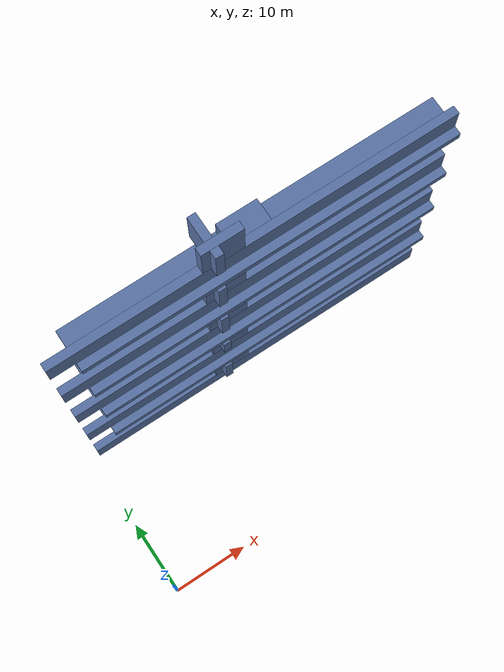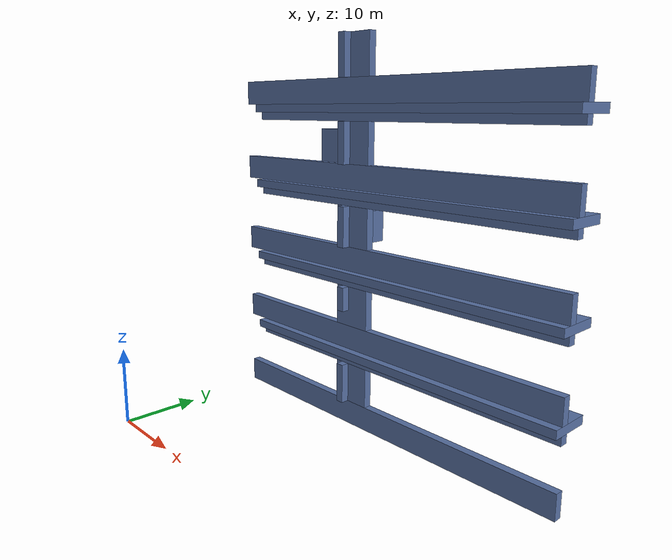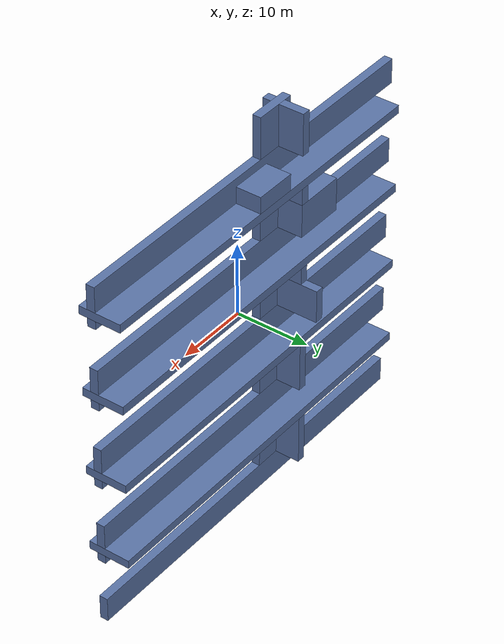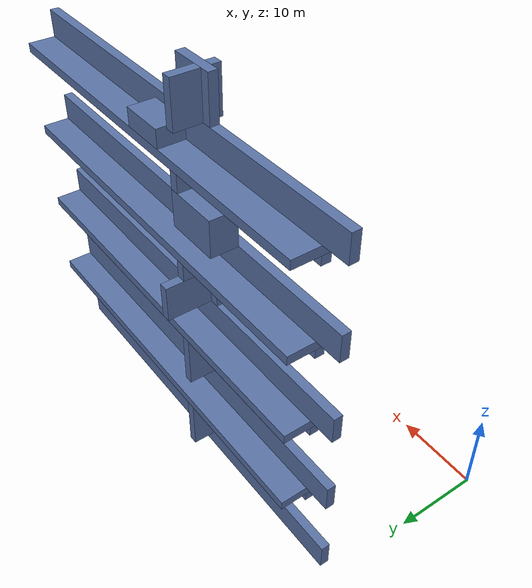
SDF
<sdf version="1.7">
 <world name="default">
  <model name="racer_env">
   <static>1</static>
   <link name="b22">
    <pose>25.500 20.500 2.500 0 0 0</pose>
    <collision name="c"><geometry><box><size>49.000 1.000 3.000</size></box></geometry></collision>
    <visual name="v">
     <geometry><box><size>49.000 1.000 3.000</size></box></geometry>
     <material><ambient>0.30 0.38 0.55 1</ambient><diffuse>0.35 0.45 0.65 1</diffuse></material>
    </visual>
   </link>
   <link name="b24">
    <pose>25.500 20.500 12.500 0 0 0</pose>
    <collision name="c"><geometry><box><size>49.000 1.000 3.000</size></box></geometry></collision>
    <visual name="v">
     <geometry><box><size>49.000 1.000 3.000</size></box></geometry>
     <material><ambient>0.30 0.38 0.55 1</ambient><diffuse>0.35 0.45 0.65 1</diffuse></material>
    </visual>
   </link>
   <link name="b26">
    <pose>25.500 20.500 22.500 0 0 0</pose>
    <collision name="c"><geometry><box><size>49.000 1.000 3.000</size></box></geometry></collision>
    <visual name="v">
     <geometry><box><size>49.000 1.000 3.000</size></box></geometry>
     <material><ambient>0.30 0.38 0.55 1</ambient><diffuse>0.35 0.45 0.65 1</diffuse></material>
    </visual>
   </link>
   <link name="b28">
    <pose>25.500 20.500 32.500 0 0 0</pose>
    <collision name="c"><geometry><box><size>49.000 1.000 3.000</size></box></geometry></collision>
    <visual name="v">
     <geometry><box><size>49.000 1.000 3.000</size></box></geometry>
     <material><ambient>0.30 0.38 0.55 1</ambient><diffuse>0.35 0.45 0.65 1</diffuse></material>
    </visual>
   </link>
   <link name="b30">
    <pose>25.500 20.500 42.500 0 0 0</pose>
    <collision name="c"><geometry><box><size>49.000 1.000 3.000</size></box></geometry></collision>
    <visual name="v">
     <geometry><box><size>49.000 1.000 3.000</size></box></geometry>
     <material><ambient>0.30 0.38 0.55 1</ambient><diffuse>0.35 0.45 0.65 1</diffuse></material>
    </visual>
   </link>
   <link name="b67">
    <pose>27.000 21.500 10.500 0 0 0</pose>
    <collision name="c"><geometry><box><size>46.000 5.000 1.000</size></box></geometry></collision>
    <visual name="v">
     <geometry><box><size>46.000 5.000 1.000</size></box></geometry>
     <material><ambient>0.30 0.38 0.55 1</ambient><diffuse>0.35 0.45 0.65 1</diffuse></material>
    </visual>
   </link>
   <link name="b68">
    <pose>27.000 21.500 20.500 0 0 0</pose>
    <collision name="c"><geometry><box><size>46.000 5.000 1.000</size></box></geometry></collision>
    <visual name="v">
     <geometry><box><size>46.000 5.000 1.000</size></box></geometry>
     <material><ambient>0.30 0.38 0.55 1</ambient><diffuse>0.35 0.45 0.65 1</diffuse></material>
    </visual>
   </link>
   <link name="b69">
    <pose>27.000 21.500 30.500 0 0 0</pose>
    <collision name="c"><geometry><box><size>46.000 5.000 1.000</size></box></geometry></collision>
    <visual name="v">
     <geometry><box><size>46.000 5.000 1.000</size></box></geometry>
     <material><ambient>0.30 0.38 0.55 1</ambient><diffuse>0.35 0.45 0.65 1</diffuse></material>
    </visual>
   </link>
   <link name="b70">
    <pose>27.000 21.500 40.500 0 0 0</pose>
    <collision name="c"><geometry><box><size>46.000 5.000 1.000</size></box></geometry></collision>
    <visual name="v">
     <geometry><box><size>46.000 5.000 1.000</size></box></geometry>
     <material><ambient>0.30 0.38 0.55 1</ambient><diffuse>0.35 0.45 0.65 1</diffuse></material>
    </visual>
   </link>
   <link name="b71">
    <pose>27.000 20.500 9.500 0 0 0</pose>
    <collision name="c"><geometry><box><size>46.000 1.000 1.000</size></box></geometry></collision>
    <visual name="v">
     <geometry><box><size>46.000 1.000 1.000</size></box></geometry>
     <material><ambient>0.30 0.38 0.55 1</ambient><diffuse>0.35 0.45 0.65 1</diffuse></material>
    </visual>
   </link>
   <link name="b72">
    <pose>27.000 20.500 19.500 0 0 0</pose>
    <collision name="c"><geometry><box><size>46.000 1.000 1.000</size></box></geometry></collision>
    <visual name="v">
     <geometry><box><size>46.000 1.000 1.000</size></box></geometry>
     <material><ambient>0.30 0.38 0.55 1</ambient><diffuse>0.35 0.45 0.65 1</diffuse></material>
    </visual>
   </link>
   <link name="b73">
    <pose>27.000 20.500 29.500 0 0 0</pose>
    <collision name="c"><geometry><box><size>46.000 1.000 1.000</size></box></geometry></collision>
    <visual name="v">
     <geometry><box><size>46.000 1.000 1.000</size></box></geometry>
     <material><ambient>0.30 0.38 0.55 1</ambient><diffuse>0.35 0.45 0.65 1</diffuse></material>
    </visual>
   </link>
   <link name="b74">
    <pose>27.000 20.500 39.500 0 0 0</pose>
    <collision name="c"><geometry><box><size>46.000 1.000 1.000</size></box></geometry></collision>
    <visual name="v">
     <geometry><box><size>46.000 1.000 1.000</size></box></geometry>
     <material><ambient>0.30 0.38 0.55 1</ambient><diffuse>0.35 0.45 0.65 1</diffuse></material>
    </visual>
   </link>
   <link name="b243">
    <pose>18.000 22.500 36.000 0 0 0</pose>
    <collision name="c"><geometry><box><size>6.000 3.000 4.000</size></box></geometry></collision>
    <visual name="v">
     <geometry><box><size>6.000 3.000 4.000</size></box></geometry>
     <material><ambient>0.30 0.38 0.55 1</ambient><diffuse>0.35 0.45 0.65 1</diffuse></material>
    </visual>
   </link>
   <link name="b260">
    <pose>21.500 20.500 6.500 0 0 0</pose>
    <collision name="c"><geometry><box><size>5.000 1.000 5.000</size></box></geometry></collision>
    <visual name="v">
     <geometry><box><size>5.000 1.000 5.000</size></box></geometry>
     <material><ambient>0.30 0.38 0.55 1</ambient><diffuse>0.35 0.45 0.65 1</diffuse></material>
    </visual>
   </link>
   <link name="b261">
    <pose>21.500 20.500 16.500 0 0 0</pose>
    <collision name="c"><geometry><box><size>5.000 1.000 5.000</size></box></geometry></collision>
    <visual name="v">
     <geometry><box><size>5.000 1.000 5.000</size></box></geometry>
     <material><ambient>0.30 0.38 0.55 1</ambient><diffuse>0.35 0.45 0.65 1</diffuse></material>
    </visual>
   </link>
   <link name="b262">
    <pose>21.500 20.500 26.500 0 0 0</pose>
    <collision name="c"><geometry><box><size>5.000 1.000 5.000</size></box></geometry></collision>
    <visual name="v">
     <geometry><box><size>5.000 1.000 5.000</size></box></geometry>
     <material><ambient>0.30 0.38 0.55 1</ambient><diffuse>0.35 0.45 0.65 1</diffuse></material>
    </visual>
   </link>
   <link name="b263">
    <pose>21.500 20.500 36.500 0 0 0</pose>
    <collision name="c"><geometry><box><size>5.000 1.000 5.000</size></box></geometry></collision>
    <visual name="v">
     <geometry><box><size>5.000 1.000 5.000</size></box></geometry>
     <material><ambient>0.30 0.38 0.55 1</ambient><diffuse>0.35 0.45 0.65 1</diffuse></material>
    </visual>
   </link>
   <link name="b264">
    <pose>21.500 20.500 46.500 0 0 0</pose>
    <collision name="c"><geometry><box><size>5.000 1.000 5.000</size></box></geometry></collision>
    <visual name="v">
     <geometry><box><size>5.000 1.000 5.000</size></box></geometry>
     <material><ambient>0.30 0.38 0.55 1</ambient><diffuse>0.35 0.45 0.65 1</diffuse></material>
    </visual>
   </link>
   <link name="b323">
    <pose>20.500 19.500 6.500 0 0 0</pose>
    <collision name="c"><geometry><box><size>1.000 1.000 5.000</size></box></geometry></collision>
    <visual name="v">
     <geometry><box><size>1.000 1.000 5.000</size></box></geometry>
     <material><ambient>0.30 0.38 0.55 1</ambient><diffuse>0.35 0.45 0.65 1</diffuse></material>
    </visual>
   </link>
   <link name="b324">
    <pose>20.500 19.500 17.500 0 0 0</pose>
    <collision name="c"><geometry><box><size>1.000 1.000 3.000</size></box></geometry></collision>
    <visual name="v">
     <geometry><box><size>1.000 1.000 3.000</size></box></geometry>
     <material><ambient>0.30 0.38 0.55 1</ambient><diffuse>0.35 0.45 0.65 1</diffuse></material>
    </visual>
   </link>
   <link name="b325">
    <pose>20.500 19.500 26.500 0 0 0</pose>
    <collision name="c"><geometry><box><size>1.000 1.000 5.000</size></box></geometry></collision>
    <visual name="v">
     <geometry><box><size>1.000 1.000 5.000</size></box></geometry>
     <material><ambient>0.30 0.38 0.55 1</ambient><diffuse>0.35 0.45 0.65 1</diffuse></material>
    </visual>
   </link>
   <link name="b326">
    <pose>20.500 19.500 36.500 0 0 0</pose>
    <collision name="c"><geometry><box><size>1.000 1.000 5.000</size></box></geometry></collision>
    <visual name="v">
     <geometry><box><size>1.000 1.000 5.000</size></box></geometry>
     <material><ambient>0.30 0.38 0.55 1</ambient><diffuse>0.35 0.45 0.65 1</diffuse></material>
    </visual>
   </link>
   <link name="b327">
    <pose>20.500 19.500 46.500 0 0 0</pose>
    <collision name="c"><geometry><box><size>1.000 1.000 5.000</size></box></geometry></collision>
    <visual name="v">
     <geometry><box><size>1.000 1.000 5.000</size></box></geometry>
     <material><ambient>0.30 0.38 0.55 1</ambient><diffuse>0.35 0.45 0.65 1</diffuse></material>
    </visual>
   </link>
   <link name="b329">
    <pose>20.500 22.500 7.000 0 0 0</pose>
    <collision name="c"><geometry><box><size>1.000 3.000 6.000</size></box></geometry></collision>
    <visual name="v">
     <geometry><box><size>1.000 3.000 6.000</size></box></geometry>
     <material><ambient>0.30 0.38 0.55 1</ambient><diffuse>0.35 0.45 0.65 1</diffuse></material>
    </visual>
   </link>
   <link name="b331">
    <pose>20.500 22.500 17.000 0 0 0</pose>
    <collision name="c"><geometry><box><size>1.000 3.000 6.000</size></box></geometry></collision>
    <visual name="v">
     <geometry><box><size>1.000 3.000 6.000</size></box></geometry>
     <material><ambient>0.30 0.38 0.55 1</ambient><diffuse>0.35 0.45 0.65 1</diffuse></material>
    </visual>
   </link>
   <link name="b333">
    <pose>20.500 23.500 26.000 0 0 0</pose>
    <collision name="c"><geometry><box><size>1.000 5.000 4.000</size></box></geometry></collision>
    <visual name="v">
     <geometry><box><size>1.000 5.000 4.000</size></box></geometry>
     <material><ambient>0.30 0.38 0.55 1</ambient><diffuse>0.35 0.45 0.65 1</diffuse></material>
    </visual>
   </link>
   <link name="b334">
    <pose>20.500 22.500 29.000 0 0 0</pose>
    <collision name="c"><geometry><box><size>1.000 3.000 2.000</size></box></geometry></collision>
    <visual name="v">
     <geometry><box><size>1.000 3.000 2.000</size></box></geometry>
     <material><ambient>0.30 0.38 0.55 1</ambient><diffuse>0.35 0.45 0.65 1</diffuse></material>
    </visual>
   </link>
   <link name="b336">
    <pose>20.500 22.500 39.000 0 0 0</pose>
    <collision name="c"><geometry><box><size>1.000 3.000 2.000</size></box></geometry></collision>
    <visual name="v">
     <geometry><box><size>1.000 3.000 2.000</size></box></geometry>
     <material><ambient>0.30 0.38 0.55 1</ambient><diffuse>0.35 0.45 0.65 1</diffuse></material>
    </visual>
   </link>
   <link name="b338">
    <pose>20.500 22.500 46.500 0 0 0</pose>
    <collision name="c"><geometry><box><size>1.000 3.000 5.000</size></box></geometry></collision>
    <visual name="v">
     <geometry><box><size>1.000 3.000 5.000</size></box></geometry>
     <material><ambient>0.30 0.38 0.55 1</ambient><diffuse>0.35 0.45 0.65 1</diffuse></material>
    </visual>
   </link>
   <link name="b384">
    <pose>25.500 22.500 42.000 0 0 0</pose>
    <collision name="c"><geometry><box><size>5.000 3.000 2.000</size></box></geometry></collision>
    <visual name="v">
     <geometry><box><size>5.000 3.000 2.000</size></box></geometry>
     <material><ambient>0.30 0.38 0.55 1</ambient><diffuse>0.35 0.45 0.65 1</diffuse></material>
    </visual>
   </link>
  </model>
 </world>
</sdf>
